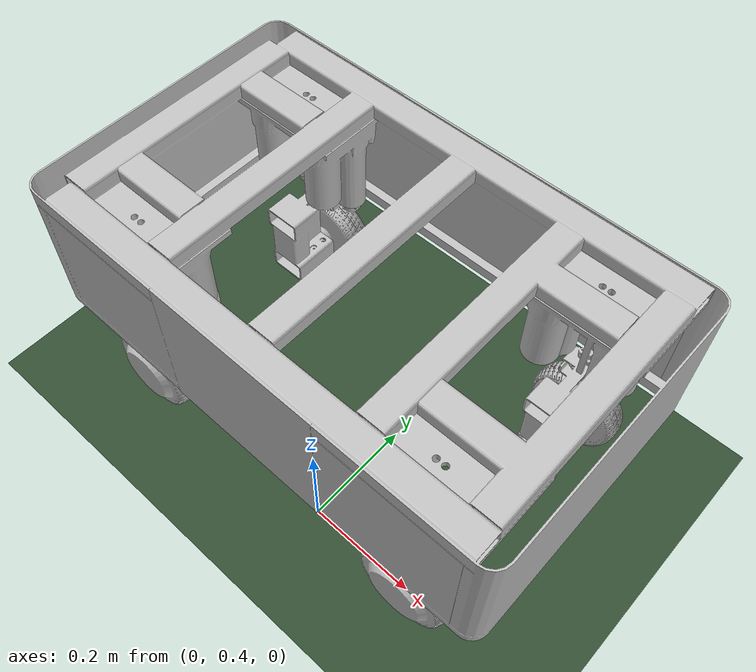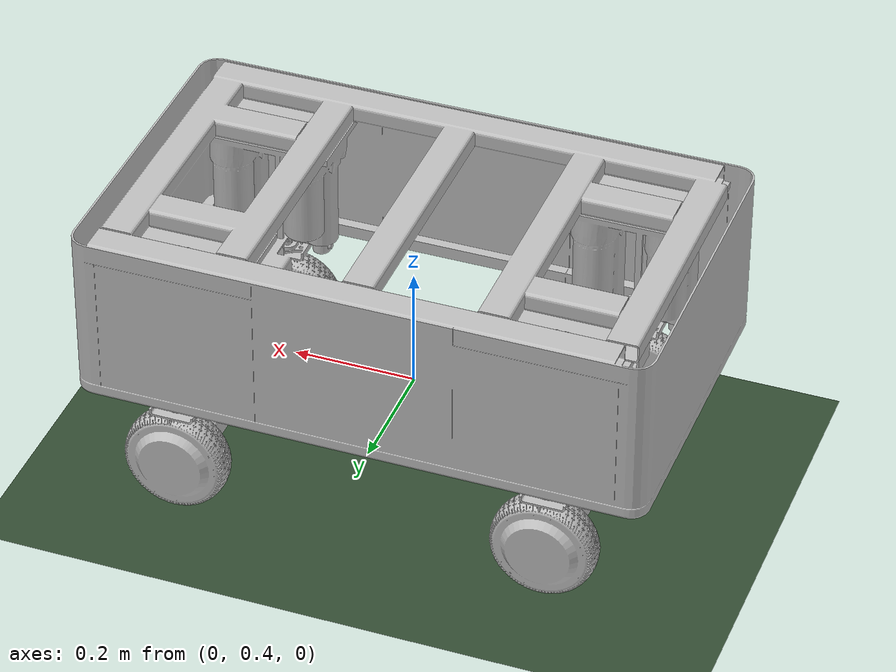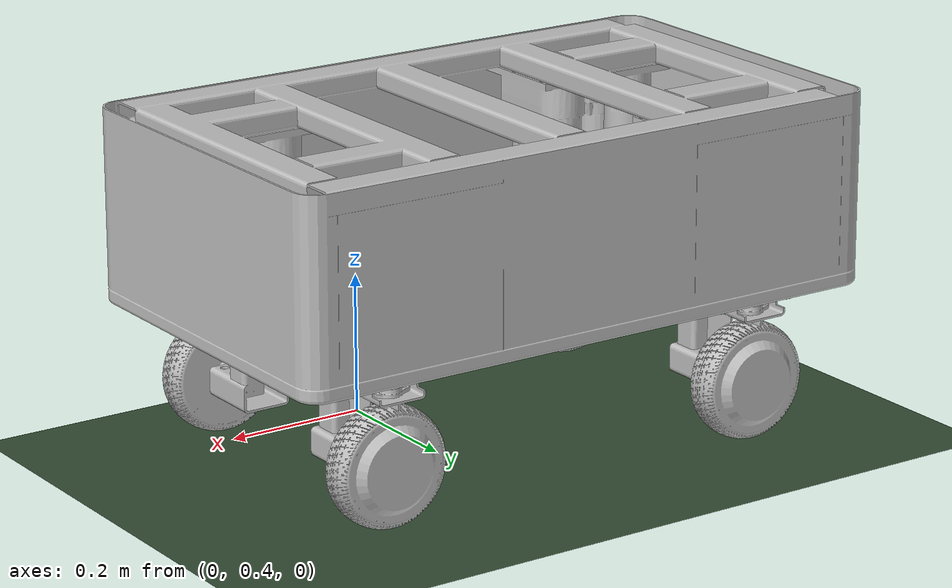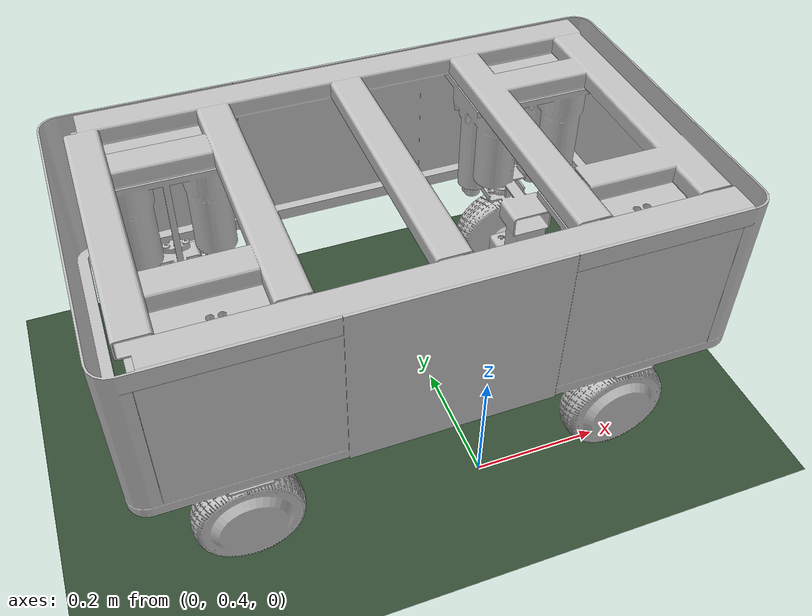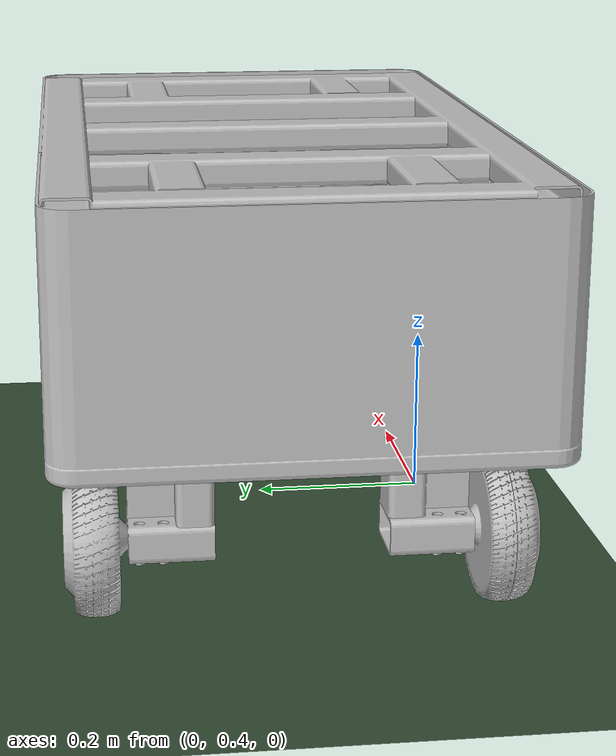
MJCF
<mujoco model="mechatronic_wheel_urdf">
  <compiler angle="radian" meshdir="../../robot_description/meshes" discardvisual="false"/>

  <asset>
    <mesh name="Body" file="Body.STL"/>
    <mesh name="Wheel_Leg_1" file="Wheel_Leg_1.STL"/>
    <mesh name="Wheel_Arm_1" file="Wheel_Arm_1.STL"/>
    <mesh name="Wheel_Steering_1" file="Wheel_Steering_1.STL"/>
    <mesh name="Wheel_Rotating_1" file="Wheel_Rotating_1.STL"/>
    <mesh name="Wheel_Leg_2" file="Wheel_Leg_2.STL"/>
    <mesh name="Wheel_Arm_2" file="Wheel_Arm_2.STL"/>
    <mesh name="Wheel_Steering_2" file="Wheel_Steering_2.STL"/>
    <mesh name="Wheel_Rotating_2" file="Wheel_Rotating_2.STL"/>
    <mesh name="Wheel_Leg_3" file="Wheel_Leg_3.STL"/>
    <mesh name="Wheel_Arm_3" file="Wheel_Arm_3.STL"/>
    <mesh name="Wheel_Steering_3" file="Wheel_Steering_3.STL"/>
    <mesh name="Wheel_Rotating_3" file="Wheel_Rotating_3.STL"/>
    <mesh name="Wheel_Leg_4" file="Wheel_Leg_4.STL"/>
    <mesh name="Wheel_Arm_4" file="Wheel_Arm_4.STL"/>
    <mesh name="Wheel_Steering_4" file="Wheel_Steering_4.STL"/>
    <mesh name="Wheel_Rotating_4" file="Wheel_Rotating_4.STL"/>
  </asset>

  <worldbody>
  <geom name="ground"
        type="plane"
        pos="0 0 0"
        size="5 5 0.1"
        rgba="0.2 0.3 0.2 1"/>

    <body name="Body" pos="0 0 -1.5">
      <freejoint name="base_free"/>
      <inertial pos="0 0 0"
          quat="0.707107 0 0 0.707107"
          mass="12.276"
          diaginertia="0.4497 0.24694 0.23048"/>
      <geom type="mesh" contype="0" conaffinity="0" group="1" density="0" rgba="0.75294 0.75294 0.75294 1" mesh="Body"/>
      <geom type="mesh" rgba="0.75294 0.75294 0.75294 1" mesh="Body"/>
      <body name="Wheel_Leg_1" pos="-0.458962 0.672072 1.73208" quat="0.0334071 0.0334071 0.706317 0.706317">
        <inertial pos="-0.084252 0.14235 0.11887" quat="0.761604 0.646318 0.036025 -0.0305712" mass="21.646" diaginertia="0.0961577 0.0725864 0.0400099"/>
        <geom type="mesh" contype="0" conaffinity="0" group="1" density="0" rgba="0.75294 0.75294 0.75294 1" mesh="Wheel_Leg_1"/>
        <geom type="mesh" rgba="0.75294 0.75294 0.75294 1" mesh="Wheel_Leg_1"/>
        <body name="Wheel_Arm_1" pos="-0.0811761 -0.0173248 0.151318" quat="0.706317 -0.706317 0.0334071 0.0334071">
          <inertial pos="1.0537e-06 2.1145e-07 0.064075" quat="0.707102 0 0 0.707112" mass="1.0657" diaginertia="0.0030328 0.0027869 0.00038231"/>
          <joint name="Prismatic_Joint_1"
            pos="0 0 0"
            axis="0 0 -1"
            type="slide"
            range="0 0.1"
            actuatorfrcrange="-1500 1500"
            damping="0.1"
            frictionloss="0"/>
          <geom type="mesh" contype="0" conaffinity="0" group="1" density="0" rgba="0.75294 0.75294 0.75294 1" mesh="Wheel_Arm_1"/>
          <geom type="mesh" rgba="0.75294 0.75294 0.75294 1" mesh="Wheel_Arm_1"/>
          <body name="Wheel_Steering_1" pos="0 0 0.014">
            <inertial pos="-0.00264548 0.069655 -0.0862401" quat="0.484793 0.514757 -0.514756 0.484796" mass="1.76193" diaginertia="0.00232397 0.00198197 0.00116748"/>
            <joint name="Steering_Joint_1" pos="0 0 0" axis="0 0 -1" range="-1.047 1.047" actuatorfrcrange="-25.5 25.5" damping="0.01" frictionloss="0.8"/>
            <geom type="mesh" contype="0" conaffinity="0" group="1" density="0" rgba="0.752941 0.752941 0.752941 1" mesh="Wheel_Steering_1"/>
            <geom type="mesh" rgba="0.752941 0.752941 0.752941 1" mesh="Wheel_Steering_1"/>
            <body name="Wheel_Rotating_1" pos="-0.005 -0.03375 -0.13194" quat="-2.59734e-06 -2.59735e-06 0.707108 0.707105">
              <inertial pos="-6.70675e-07 5.15937e-08 0.0307772" quat="0.169392 0.686514 -0.169402 0.686519" mass="2.43384" diaginertia="0.00638308 0.00377995 0.0037798"/>
              <joint name="Rotating_Joint_1" pos="0 0 0" axis="0 0 -1" actuatorfrcrange="-6 6" damping="0.01" frictionloss="0.8"/>
              <geom name="wheel_contact_1" type="mesh" contype="0" conaffinity="0" group="1" density="0" rgba="0.752941 0.752941 0.752941 1" mesh="Wheel_Rotating_1"/>
              <geom type="mesh" rgba="0.752941 0.752941 0.752941 1" mesh="Wheel_Rotating_1"/>
            </body>
          </body>
        </body>
      </body>
      <body name="Wheel_Leg_2" pos="0.121038 0.672072 1.73208" quat="0.0334071 0.0334071 0.706317 0.706317">
        <inertial pos="-0.0842515 0.14235 0.11887" quat="0.761604 0.646318 0.0360245 -0.0305707" mass="21.6465" diaginertia="0.0961576 0.0725868 0.0400104"/>
        <geom type="mesh" contype="0" conaffinity="0" group="1" density="0" rgba="0.752941 0.752941 0.752941 1" mesh="Wheel_Leg_2"/>
        <geom type="mesh" rgba="0.752941 0.752941 0.752941 1" mesh="Wheel_Leg_2"/>
        <body name="Wheel_Arm_2" pos="-0.0811761 -0.0173248 0.151318" quat="0.706317 -0.706317 0.0334071 0.0334071">
          <inertial pos="1.05372e-06 2.11453e-07 0.064075" quat="0.707102 0 0 0.707112" mass="1.06571" diaginertia="0.0030328 0.00278694 0.000382312"/>
          <joint name="Prismatic_Joint_2"
            pos="0 0 0"
            axis="0 0 -1"
            type="slide"
            range="0 0.1"
            actuatorfrcrange="-1500 1500"
            damping="0.1"
            frictionloss="0"/>
          <geom type="mesh" contype="0" conaffinity="0" group="1" density="0" rgba="0.752941 0.752941 0.752941 1" mesh="Wheel_Arm_2"/>
          <geom type="mesh" rgba="0.752941 0.752941 0.752941 1" mesh="Wheel_Arm_2"/>
          <body name="Wheel_Steering_2" pos="0 0 0.014">
            <inertial pos="-0.00264548 0.069655 -0.0862401" quat="0.484793 0.514757 -0.514756 0.484796" mass="1.76193" diaginertia="0.00232397 0.00198197 0.00116748"/>
            <joint name="Steering_Joint_2" pos="0 0 0" axis="0 0 -1" range="-1.047 1.047" actuatorfrcrange="-25.5 25.5" damping="0.01" frictionloss="0.8"/>
            <geom type="mesh" contype="0" conaffinity="0" group="1" density="0" rgba="0.752941 0.752941 0.752941 1" mesh="Wheel_Steering_2"/>
            <geom type="mesh" rgba="0.752941 0.752941 0.752941 1" mesh="Wheel_Steering_2"/>
            <body name="Wheel_Rotating_2" pos="-0.005 -0.032419 -0.13194" quat="-2.59734e-06 -2.59735e-06 0.707108 0.707105">
              <inertial pos="1.91665e-07 -6.55501e-07 0.0294464" quat="0.53265 0.465071 -0.532646 0.465061" mass="2.43384" diaginertia="0.00638308 0.00377995 0.0037798"/>
              <joint name="Rotating_Joint_2" pos="0 0 0" axis="0 0 -1" actuatorfrcrange="-6 6" damping="0.01" frictionloss="0.8"/>
              <geom name="wheel_contact_2" type="mesh" contype="0" conaffinity="0" group="1" density="0" rgba="0.752941 0.752941 0.752941 1" mesh="Wheel_Rotating_2"/>
              <geom type="mesh" rgba="0.752941 0.752941 0.752941 1" mesh="Wheel_Rotating_2"/>
            </body>
          </body>
        </body>
      </body>
      <body name="Wheel_Leg_3" pos="-0.2748 0.460678 1.73208" quat="0.706317 0.706317 -0.0334071 -0.0334071">
        <inertial pos="-0.084606 0.14235 0.051247" quat="0.761604 0.646318 0.0360251 -0.0305711" mass="21.6465" diaginertia="0.0961576 0.0725867 0.0400104"/>
        <geom type="mesh" contype="0" conaffinity="0" group="1" density="0" rgba="0.752941 0.752941 0.752941 1" mesh="Wheel_Leg_3"/>
        <geom type="mesh" rgba="0.752941 0.752941 0.752941 1" mesh="Wheel_Leg_3"/>
        <body name="Wheel_Arm_3" pos="-0.0815305 -0.0173248 0.083695" quat="-0.0334071 0.0334071 0.706317 0.706317">
          <inertial pos="-1.05372e-06 -2.11453e-07 0.064075" quat="0.707102 0 0 0.707112" mass="1.06571" diaginertia="0.0030328 0.00278694 0.000382312"/>
          <joint name="Prismatic_Joint_3"
            pos="0 0 0"
            axis="0 0 -1"
            type="slide"
            range="0 0.1"
            actuatorfrcrange="-1500 1500"
            damping="0.1"
            frictionloss="0"/>
          <geom type="mesh" contype="0" conaffinity="0" group="1" density="0" rgba="0.752941 0.752941 0.752941 1" mesh="Wheel_Arm_3"/>
          <geom type="mesh" rgba="0.752941 0.752941 0.752941 1" mesh="Wheel_Arm_3"/>
          <body name="Wheel_Steering_3" pos="0 0 0.014">
            <inertial pos="0.00264548 -0.069655 -0.0862401" quat="0.514756 0.484796 -0.484793 0.514757" mass="1.76193" diaginertia="0.00232397 0.00198197 0.00116748"/>
            <joint name="Steering_Joint_3" pos="0 0 0" axis="0 0 -1" range="-1.047 1.047" actuatorfrcrange="-25.5 25.5" damping="0.01" frictionloss="0.8"/>
            <geom type="mesh" contype="0" conaffinity="0" group="1" density="0" rgba="0.752941 0.752941 0.752941 1" mesh="Wheel_Steering_3"/>
            <geom type="mesh" rgba="0.752941 0.752941 0.752941 1" mesh="Wheel_Steering_3"/>
            <body name="Wheel_Rotating_3" pos="0.005 0.03375 -0.13194" quat="-2.59734e-06 -2.59735e-06 0.707108 0.707105">
              <inertial pos="6.79132e-07 2.73946e-08 -0.0307772" quat="-0.169663 0.686447 0.169673 0.686452" mass="2.43384" diaginertia="0.00638308 0.00377995 0.0037798"/>
              <joint name="Rotating_Joint_3" pos="0 0 0" axis="0 0 1" actuatorfrcrange="-6 6" damping="0.01" frictionloss="0.8"/>
              <geom name="wheel_contact_3" type="mesh" contype="0" conaffinity="0" group="1" density="0" rgba="0.752941 0.752941 0.752941 1" mesh="Wheel_Rotating_3"/>
              <geom type="mesh" rgba="0.752941 0.752941 0.752941 1" mesh="Wheel_Rotating_3"/>
            </body>
          </body>
        </body>
      </body>
      <body name="Wheel_Leg_4" pos="0.3052 0.46068 1.7321" quat="0.706316 0.706318 -0.0334073 -0.0334071">
        <inertial pos="-0.084606 0.14235 0.051247" quat="0.761604 0.646318 0.0360251 -0.0305711" mass="21.6465" diaginertia="0.0961576 0.0725867 0.0400104"/>
        <geom type="mesh" contype="0" conaffinity="0" group="1" density="0" rgba="0.752941 0.752941 0.752941 1" mesh="Wheel_Leg_4"/>
        <geom type="mesh" rgba="0.752941 0.752941 0.752941 1" mesh="Wheel_Leg_4"/>
        <body name="Wheel_Arm_4" pos="-0.081531 -0.017325 0.083695" quat="-0.0334098 0.0334045 0.706319 0.706316">
          <inertial pos="-1.05372e-06 -2.11453e-07 0.064075" quat="0.707102 0 0 0.707112" mass="1.06571" diaginertia="0.0030328 0.00278694 0.000382312"/>
          <joint name="Prismatic_Joint_4"
            pos="0 0 0"
            axis="0 0 -1"
            type="slide"
            range="0 0.1"
            actuatorfrcrange="-1500 1500"
            damping="0.1"
            frictionloss="0"/>
          <geom type="mesh" contype="0" conaffinity="0" group="1" density="0" rgba="0.752941 0.752941 0.752941 1" mesh="Wheel_Arm_4"/>
          <geom type="mesh" rgba="0.752941 0.752941 0.752941 1" mesh="Wheel_Arm_4"/>
          <body name="Wheel_Steering_4" pos="0.005 0.032419 -0.11794" quat="-2.59734e-06 -2.59735e-06 0.707108 0.707105">
            <inertial pos="0.00235452 0.0456977 -0.102074" quat="0.706789 0.0211871 -0.0211848 0.70679" mass="1.76193" diaginertia="0.00232397 0.00198197 0.00116748"/>
            <joint name="Steering_Joint_4" pos="0.005000 0.117940 -0.032419" axis="0 -1 0"
              range="-1.047 1.047" actuatorfrcrange="-25.5 25.5"
              damping="0.01" frictionloss="0.8"/>
            <geom type="mesh" contype="0" conaffinity="0" group="1" density="0" rgba="0.752941 0.752941 0.752941 1" mesh="Wheel_Steering_4"/>
            <geom type="mesh" rgba="0.752941 0.752941 0.752941 1" mesh="Wheel_Steering_4"/>
            <body name="Wheel_Rotating_4">
              <inertial pos="0.005 0.032419 -0.13194" quat="-0.171316 0.686036 0.171326 0.686041" mass="2.43383" diaginertia="0.00638308 0.00377995 0.0037798"/>
              <joint name="Rotating_Joint_4" pos="0 0 0" axis="0 0 1" actuatorfrcrange="-6 6" damping="0.01" frictionloss="0.8"/>
              <geom name="wheel_contact_4" type="mesh" contype="0" conaffinity="0" group="1" density="0" rgba="0.752941 0.752941 0.752941 1" mesh="Wheel_Rotating_4"/>
              <geom type="mesh" rgba="0.752941 0.752941 0.752941 1" mesh="Wheel_Rotating_4"/>
            </body>
          </body>
        </body>
      </body>
    </body>
  </worldbody>

  <actuator>
    <motor name="wheel_motor_1" joint="Rotating_Joint_1" gear="1" ctrllimited="true" ctrlrange="-20 20"/>
    <motor name="wheel_motor_2" joint="Rotating_Joint_2" gear="1" ctrllimited="true" ctrlrange="-20 20"/>
    <motor name="wheel_motor_3" joint="Rotating_Joint_3" gear="1" ctrllimited="true" ctrlrange="-20 20"/>
    <motor name="wheel_motor_4" joint="Rotating_Joint_4" gear="1" ctrllimited="true" ctrlrange="-20 20"/>

    <motor name="steering_motor_1" joint="Steering_Joint_1" gear="1"
          ctrllimited="true" ctrlrange="-3 3"
          forcelimited="true" forcerange="-3 3"/>
    <motor name="steering_motor_2" joint="Steering_Joint_2" gear="1"
          ctrllimited="true" ctrlrange="-3 3"
          forcelimited="true" forcerange="-3 3"/>
    <motor name="steering_motor_3" joint="Steering_Joint_3" gear="1"
          ctrllimited="true" ctrlrange="-3 3"
          forcelimited="true" forcerange="-3 3"/>
    <motor name="steering_motor_4" joint="Steering_Joint_4" gear="1"
          ctrllimited="true" ctrlrange="-3 3"
          forcelimited="true" forcerange="-3 3"/>

    <intvelocity name="lift_1"
             joint="Prismatic_Joint_1"
             kp="10000"
             kv="10000"
             actrange="0 0.1"
             ctrllimited="true"
             ctrlrange="-0.025 0.025"
             forcelimited="true"
             forcerange="-1500 1500"/>

    <intvelocity name="lift_2"
             joint="Prismatic_Joint_2"
             kp="10000"
             kv="10000"
             actrange="0 0.1"
             ctrllimited="true"
             ctrlrange="-0.025 0.025"
             forcelimited="true"
             forcerange="-1500 1500"/>

    <intvelocity name="lift_3"
             joint="Prismatic_Joint_3"
             kp="10000"
             kv="10000"
             actrange="0 0.1"
             ctrllimited="true"
             ctrlrange="-0.025 0.025"
             forcelimited="true"
             forcerange="-1500 1500"/>

    <intvelocity name="lift_4"
             joint="Prismatic_Joint_4"
             kp="10000"
             kv="10000"
             actrange="0 0.1"
             ctrllimited="true"
             ctrlrange="-0.025 0.025"
             forcelimited="true"
             forcerange="-1500 1500"/>
  </actuator>
  <contact>
    <exclude body1="Body" body2="Wheel_Leg_1"/>
    <exclude body1="Body" body2="Wheel_Leg_2"/>
    <exclude body1="Body" body2="Wheel_Leg_3"/>
    <exclude body1="Body" body2="Wheel_Leg_4"/>
    <exclude body1="Body" body2="Wheel_Arm_1"/>
    <exclude body1="Body" body2="Wheel_Arm_2"/>
    <exclude body1="Body" body2="Wheel_Arm_3"/>
    <exclude body1="Body" body2="Wheel_Arm_4"/>
    <exclude body1="Body" body2="Wheel_Steering_1"/>
    <exclude body1="Body" body2="Wheel_Steering_2"/>
    <exclude body1="Body" body2="Wheel_Steering_3"/>
    <exclude body1="Body" body2="Wheel_Steering_4"/>
    <exclude body1="Body" body2="Wheel_Rotating_1"/>
    <exclude body1="Body" body2="Wheel_Rotating_2"/>
    <exclude body1="Body" body2="Wheel_Rotating_3"/>
    <exclude body1="Body" body2="Wheel_Rotating_4"/>

    <exclude body1="Wheel_Leg_1" body2="Wheel_Leg_2"/>
    <exclude body1="Wheel_Leg_1" body2="Wheel_Leg_3"/>
    <exclude body1="Wheel_Leg_1" body2="Wheel_Leg_4"/>
    <exclude body1="Wheel_Leg_1" body2="Wheel_Arm_1"/>
    <exclude body1="Wheel_Leg_1" body2="Wheel_Arm_2"/>
    <exclude body1="Wheel_Leg_1" body2="Wheel_Arm_3"/>
    <exclude body1="Wheel_Leg_1" body2="Wheel_Arm_4"/>
    <exclude body1="Wheel_Leg_1" body2="Wheel_Steering_1"/>
    <exclude body1="Wheel_Leg_1" body2="Wheel_Steering_2"/>
    <exclude body1="Wheel_Leg_1" body2="Wheel_Steering_3"/>
    <exclude body1="Wheel_Leg_1" body2="Wheel_Steering_4"/>
    <exclude body1="Wheel_Leg_1" body2="Wheel_Rotating_1"/>
    <exclude body1="Wheel_Leg_1" body2="Wheel_Rotating_2"/>
    <exclude body1="Wheel_Leg_1" body2="Wheel_Rotating_3"/>
    <exclude body1="Wheel_Leg_1" body2="Wheel_Rotating_4"/>

    <exclude body1="Wheel_Leg_2" body2="Wheel_Leg_3"/>
    <exclude body1="Wheel_Leg_2" body2="Wheel_Leg_4"/>
    <exclude body1="Wheel_Leg_2" body2="Wheel_Arm_1"/>
    <exclude body1="Wheel_Leg_2" body2="Wheel_Arm_2"/>
    <exclude body1="Wheel_Leg_2" body2="Wheel_Arm_3"/>
    <exclude body1="Wheel_Leg_2" body2="Wheel_Arm_4"/>
    <exclude body1="Wheel_Leg_2" body2="Wheel_Steering_1"/>
    <exclude body1="Wheel_Leg_2" body2="Wheel_Steering_2"/>
    <exclude body1="Wheel_Leg_2" body2="Wheel_Steering_3"/>
    <exclude body1="Wheel_Leg_2" body2="Wheel_Steering_4"/>
    <exclude body1="Wheel_Leg_2" body2="Wheel_Rotating_1"/>
    <exclude body1="Wheel_Leg_2" body2="Wheel_Rotating_2"/>
    <exclude body1="Wheel_Leg_2" body2="Wheel_Rotating_3"/>
    <exclude body1="Wheel_Leg_2" body2="Wheel_Rotating_4"/>

    <exclude body1="Wheel_Leg_3" body2="Wheel_Leg_4"/>
    <exclude body1="Wheel_Leg_3" body2="Wheel_Arm_1"/>
    <exclude body1="Wheel_Leg_3" body2="Wheel_Arm_2"/>
    <exclude body1="Wheel_Leg_3" body2="Wheel_Arm_3"/>
    <exclude body1="Wheel_Leg_3" body2="Wheel_Arm_4"/>
    <exclude body1="Wheel_Leg_3" body2="Wheel_Steering_1"/>
    <exclude body1="Wheel_Leg_3" body2="Wheel_Steering_2"/>
    <exclude body1="Wheel_Leg_3" body2="Wheel_Steering_3"/>
    <exclude body1="Wheel_Leg_3" body2="Wheel_Steering_4"/>
    <exclude body1="Wheel_Leg_3" body2="Wheel_Rotating_1"/>
    <exclude body1="Wheel_Leg_3" body2="Wheel_Rotating_2"/>
    <exclude body1="Wheel_Leg_3" body2="Wheel_Rotating_3"/>
    <exclude body1="Wheel_Leg_3" body2="Wheel_Rotating_4"/>

    <exclude body1="Wheel_Leg_4" body2="Wheel_Arm_1"/>
    <exclude body1="Wheel_Leg_4" body2="Wheel_Arm_2"/>
    <exclude body1="Wheel_Leg_4" body2="Wheel_Arm_3"/>
    <exclude body1="Wheel_Leg_4" body2="Wheel_Arm_4"/>
    <exclude body1="Wheel_Leg_4" body2="Wheel_Steering_1"/>
    <exclude body1="Wheel_Leg_4" body2="Wheel_Steering_2"/>
    <exclude body1="Wheel_Leg_4" body2="Wheel_Steering_3"/>
    <exclude body1="Wheel_Leg_4" body2="Wheel_Steering_4"/>
    <exclude body1="Wheel_Leg_4" body2="Wheel_Rotating_1"/>
    <exclude body1="Wheel_Leg_4" body2="Wheel_Rotating_2"/>
    <exclude body1="Wheel_Leg_4" body2="Wheel_Rotating_3"/>
    <exclude body1="Wheel_Leg_4" body2="Wheel_Rotating_4"/>

    <exclude body1="Wheel_Arm_1" body2="Wheel_Arm_2"/>
    <exclude body1="Wheel_Arm_1" body2="Wheel_Arm_3"/>
    <exclude body1="Wheel_Arm_1" body2="Wheel_Arm_4"/>
    <exclude body1="Wheel_Arm_1" body2="Wheel_Steering_1"/>
    <exclude body1="Wheel_Arm_1" body2="Wheel_Steering_2"/>
    <exclude body1="Wheel_Arm_1" body2="Wheel_Steering_3"/>
    <exclude body1="Wheel_Arm_1" body2="Wheel_Steering_4"/>
    <exclude body1="Wheel_Arm_1" body2="Wheel_Rotating_1"/>
    <exclude body1="Wheel_Arm_1" body2="Wheel_Rotating_2"/>
    <exclude body1="Wheel_Arm_1" body2="Wheel_Rotating_3"/>
    <exclude body1="Wheel_Arm_1" body2="Wheel_Rotating_4"/>

    <exclude body1="Wheel_Arm_2" body2="Wheel_Arm_3"/>
    <exclude body1="Wheel_Arm_2" body2="Wheel_Arm_4"/>
    <exclude body1="Wheel_Arm_2" body2="Wheel_Steering_1"/>
    <exclude body1="Wheel_Arm_2" body2="Wheel_Steering_2"/>
    <exclude body1="Wheel_Arm_2" body2="Wheel_Steering_3"/>
    <exclude body1="Wheel_Arm_2" body2="Wheel_Steering_4"/>
    <exclude body1="Wheel_Arm_2" body2="Wheel_Rotating_1"/>
    <exclude body1="Wheel_Arm_2" body2="Wheel_Rotating_2"/>
    <exclude body1="Wheel_Arm_2" body2="Wheel_Rotating_3"/>
    <exclude body1="Wheel_Arm_2" body2="Wheel_Rotating_4"/>

    <exclude body1="Wheel_Arm_3" body2="Wheel_Arm_4"/>
    <exclude body1="Wheel_Arm_3" body2="Wheel_Steering_1"/>
    <exclude body1="Wheel_Arm_3" body2="Wheel_Steering_2"/>
    <exclude body1="Wheel_Arm_3" body2="Wheel_Steering_3"/>
    <exclude body1="Wheel_Arm_3" body2="Wheel_Steering_4"/>
    <exclude body1="Wheel_Arm_3" body2="Wheel_Rotating_1"/>
    <exclude body1="Wheel_Arm_3" body2="Wheel_Rotating_2"/>
    <exclude body1="Wheel_Arm_3" body2="Wheel_Rotating_3"/>
    <exclude body1="Wheel_Arm_3" body2="Wheel_Rotating_4"/>

    <exclude body1="Wheel_Arm_4" body2="Wheel_Steering_1"/>
    <exclude body1="Wheel_Arm_4" body2="Wheel_Steering_2"/>
    <exclude body1="Wheel_Arm_4" body2="Wheel_Steering_3"/>
    <exclude body1="Wheel_Arm_4" body2="Wheel_Steering_4"/>
    <exclude body1="Wheel_Arm_4" body2="Wheel_Rotating_1"/>
    <exclude body1="Wheel_Arm_4" body2="Wheel_Rotating_2"/>
    <exclude body1="Wheel_Arm_4" body2="Wheel_Rotating_3"/>
    <exclude body1="Wheel_Arm_4" body2="Wheel_Rotating_4"/>

    <exclude body1="Wheel_Steering_1" body2="Wheel_Steering_2"/>
    <exclude body1="Wheel_Steering_1" body2="Wheel_Steering_3"/>
    <exclude body1="Wheel_Steering_1" body2="Wheel_Steering_4"/>
    <exclude body1="Wheel_Steering_1" body2="Wheel_Rotating_1"/>
    <exclude body1="Wheel_Steering_1" body2="Wheel_Rotating_2"/>
    <exclude body1="Wheel_Steering_1" body2="Wheel_Rotating_3"/>
    <exclude body1="Wheel_Steering_1" body2="Wheel_Rotating_4"/>

    <exclude body1="Wheel_Steering_2" body2="Wheel_Steering_3"/>
    <exclude body1="Wheel_Steering_2" body2="Wheel_Steering_4"/>
    <exclude body1="Wheel_Steering_2" body2="Wheel_Rotating_1"/>
    <exclude body1="Wheel_Steering_2" body2="Wheel_Rotating_2"/>
    <exclude body1="Wheel_Steering_2" body2="Wheel_Rotating_3"/>
    <exclude body1="Wheel_Steering_2" body2="Wheel_Rotating_4"/>

    <exclude body1="Wheel_Steering_3" body2="Wheel_Steering_4"/>
    <exclude body1="Wheel_Steering_3" body2="Wheel_Rotating_1"/>
    <exclude body1="Wheel_Steering_3" body2="Wheel_Rotating_2"/>
    <exclude body1="Wheel_Steering_3" body2="Wheel_Rotating_3"/>
    <exclude body1="Wheel_Steering_3" body2="Wheel_Rotating_4"/>

    <exclude body1="Wheel_Steering_4" body2="Wheel_Rotating_1"/>
    <exclude body1="Wheel_Steering_4" body2="Wheel_Rotating_2"/>
    <exclude body1="Wheel_Steering_4" body2="Wheel_Rotating_3"/>
    <exclude body1="Wheel_Steering_4" body2="Wheel_Rotating_4"/>

    <exclude body1="Wheel_Rotating_1" body2="Wheel_Rotating_2"/>
    <exclude body1="Wheel_Rotating_1" body2="Wheel_Rotating_3"/>
    <exclude body1="Wheel_Rotating_1" body2="Wheel_Rotating_4"/>

    <exclude body1="Wheel_Rotating_2" body2="Wheel_Rotating_3"/>
    <exclude body1="Wheel_Rotating_2" body2="Wheel_Rotating_4"/>

    <exclude body1="Wheel_Rotating_3" body2="Wheel_Rotating_4"/>
  </contact>

  <option integrator="implicitfast"/>
</mujoco>
